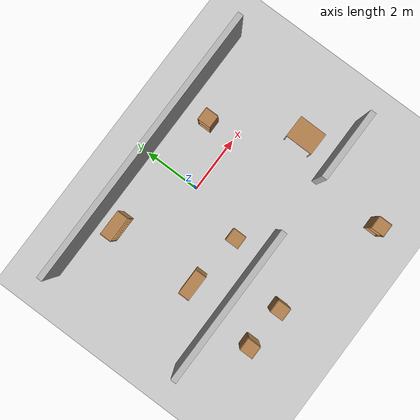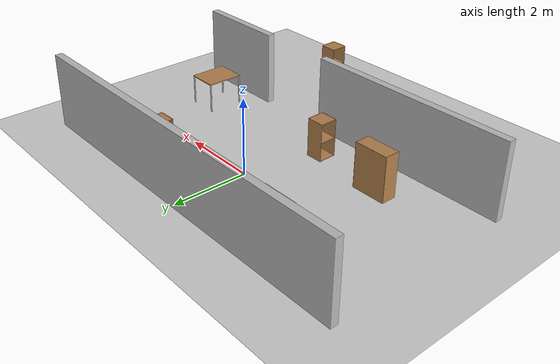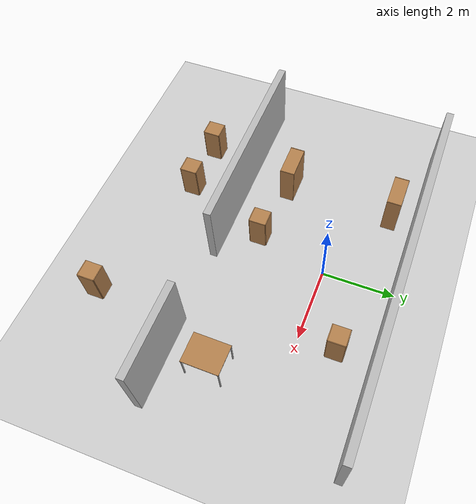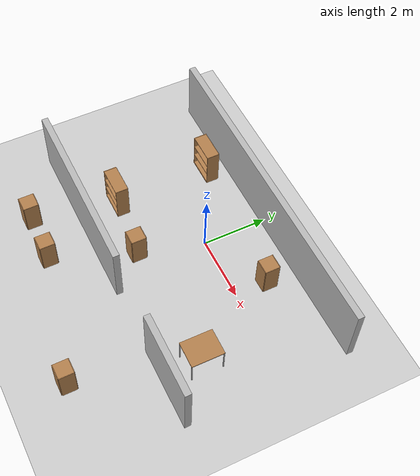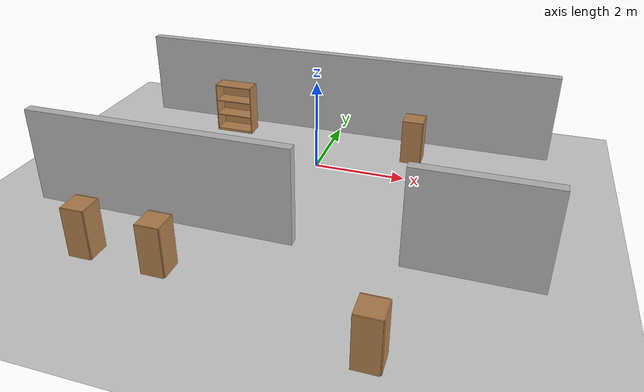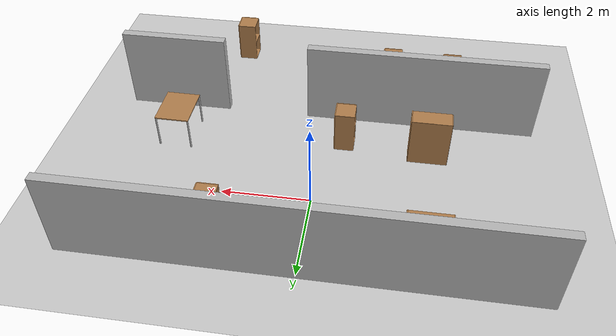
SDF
<sdf version="1.6">
 <world name="default">
  <model name="ground_plane">
   <static>1</static>
   <link name="link">
    <collision name="collision">
     <geometry><plane><normal>0 0 1</normal><size>100 100</size></plane></geometry>
     <surface><friction><ode><mu>100</mu><mu2>50</mu2></ode></friction></surface>
    </collision>
    <visual name="visual">
     <cast_shadows>0</cast_shadows>
     <geometry><plane><normal>0 0 1</normal><size>100 100</size></plane></geometry>
     <material>
      <script><uri>file://media/materials/scripts/gazebo.material</uri><name>Gazebo/Grey</name></script>
     </material>
    </visual>
    <velocity_decay><linear>0</linear><angular>0</angular></velocity_decay>
   </link>
  </model>
  <model name="wall_2_model">
   <pose>0.001644 1.98596 1 0 -0 0</pose>
   <static>1</static>
   <link name="wall_2_body">
    <inertial>
     <mass>1</mass>
     <inertia><ixx>1</ixx><ixy>0</ixy><ixz>0</ixz><iyy>1</iyy><iyz>0</iyz><izz>1</izz></inertia>
    </inertial>
    <collision name="collision"><geometry><box><size>10 0.2 2</size></box></geometry></collision>
    <visual name="visual"><geometry><box><size>10 0.2 2</size></box></geometry></visual>
    <velocity_decay><linear>0</linear><angular>0</angular></velocity_decay>
   </link>
  </model>
  <model name="wall_5_model">
   <pose>-2.25 -3 1 0 -0 0</pose>
   <static>1</static>
   <link name="wall_5_body">
    <inertial>
     <mass>1</mass>
     <inertia><ixx>1</ixx><ixy>0</ixy><ixz>0</ixz><iyy>1</iyy><iyz>0</iyz><izz>1</izz></inertia>
    </inertial>
    <collision name="collision"><geometry><box><size>5.5 0.2 2</size></box></geometry></collision>
    <visual name="visual"><geometry><box><size>5.5 0.2 2</size></box></geometry></visual>
    <velocity_decay><linear>0</linear><angular>0</angular></velocity_decay>
   </link>
  </model>
  <model name="wall_6_model">
   <pose>3.75 -3 1 0 -0 0</pose>
   <static>1</static>
   <link name="wall_6_body">
    <inertial>
     <mass>1</mass>
     <inertia><ixx>1</ixx><ixy>0</ixy><ixz>0</ixz><iyy>1</iyy><iyz>0</iyz><izz>1</izz></inertia>
    </inertial>
    <collision name="collision"><geometry><box><size>2.5 0.2 2</size></box></geometry></collision>
    <visual name="visual"><geometry><box><size>2.5 0.2 2</size></box></geometry></visual>
    <velocity_decay><linear>0</linear><angular>0</angular></velocity_decay>
   </link>
  </model>
  <model name="cabinet">
   <static>0</static>
   <link name="cabinet_bottom_plate">
    <inertial>
     <pose>0 0 -1 0 -0 0</pose>
     <inertia><ixx>2.05</ixx><ixy>0</ixy><ixz>0</ixz><iyy>2.05</iyy><iyz>0</iyz><izz>2.05</izz></inertia>
     <mass>25</mass>
    </inertial>
    <collision name="cabinet_bottom_plate_geom">
     <pose>0 0 0.01 0 -0 0</pose>
     <geometry><box><size>0.45 0.45 0.02</size></box></geometry>
    </collision>
    <visual name="cabinet_bottom_plate_geom_visual">
     <pose>0 0 0.01 0 -0 0</pose>
     <geometry><box><size>0.45 0.45 0.02</size></box></geometry>
     <material>
      <script><uri>file://media/materials/scripts/gazebo.material</uri><name>Gazebo/Wood</name></script>
     </material>
    </visual>
    <collision name="cabinet_bottom_plate_geom_cabinet_back_plate">
     <pose>0.235 0 0.51 0 -0 0</pose>
     <geometry><box><size>0.02 0.45 1.02</size></box></geometry>
    </collision>
    <visual name="cabinet_bottom_plate_geom_cabinet_back_plate_visual">
     <pose>0.235 0 0.51 0 -0 0</pose>
     <geometry><box><size>0.02 0.45 1.02</size></box></geometry>
     <material>
      <script><uri>file://media/materials/scripts/gazebo.material</uri><name>Gazebo/Wood</name></script>
     </material>
    </visual>
    <collision name="cabinet_bottom_plate_geom_cabinet_left_plate">
     <pose>0 0.235 0.51 0 -0 0</pose>
     <geometry><box><size>0.45 0.02 1.02</size></box></geometry>
    </collision>
    <visual name="cabinet_bottom_plate_geom_cabinet_left_plate_visual">
     <pose>0 0.235 0.51 0 -0 0</pose>
     <geometry><box><size>0.45 0.02 1.02</size></box></geometry>
     <material>
      <script><uri>file://media/materials/scripts/gazebo.material</uri><name>Gazebo/Wood</name></script>
     </material>
    </visual>
    <collision name="cabinet_bottom_plate_geom_cabinet_middle_plate">
     <pose>0 0 0.51 0 -0 0</pose>
     <geometry><box><size>0.45 0.45 0.02</size></box></geometry>
    </collision>
    <visual name="cabinet_bottom_plate_geom_cabinet_middle_plate_visual">
     <pose>0 0 0.51 0 -0 0</pose>
     <geometry><box><size>0.45 0.45 0.02</size></box></geometry>
     <material>
      <script><uri>file://media/materials/scripts/gazebo.material</uri><name>Gazebo/Wood</name></script>
     </material>
    </visual>
    <collision name="cabinet_bottom_plate_geom_cabinet_right_plate">
     <pose>0 -0.235 0.51 0 -0 0</pose>
     <geometry><box><size>0.45 0.02 1.02</size></box></geometry>
    </collision>
    <visual name="cabinet_bottom_plate_geom_cabinet_right_plate_visual">
     <pose>0 -0.235 0.51 0 -0 0</pose>
     <geometry><box><size>0.45 0.02 1.02</size></box></geometry>
     <material>
      <script><uri>file://media/materials/scripts/gazebo.material</uri><name>Gazebo/Wood</name></script>
     </material>
    </visual>
    <collision name="cabinet_bottom_plate_geom_cabinet_top_plate">
     <pose>0 0 1.01 0 -0 0</pose>
     <geometry><box><size>0.45 0.45 0.02</size></box></geometry>
    </collision>
    <visual name="cabinet_bottom_plate_geom_cabinet_top_plate_visual">
     <pose>0 0 1.01 0 -0 0</pose>
     <geometry><box><size>0.45 0.45 0.02</size></box></geometry>
     <material>
      <script><uri>file://media/materials/scripts/gazebo.material</uri><name>Gazebo/Wood</name></script>
     </material>
    </visual>
    <velocity_decay><linear>0</linear><angular>0</angular></velocity_decay>
   </link>
   <pose>1.99812 1.00005 0 -0 -1e-06 0.002549</pose>
  </model>
  <model name="cabinet_0">
   <static>0</static>
   <link name="cabinet_bottom_plate">
    <inertial>
     <pose>0 0 -1 0 -0 0</pose>
     <inertia><ixx>2.05</ixx><ixy>0</ixy><ixz>0</ixz><iyy>2.05</iyy><iyz>0</iyz><izz>2.05</izz></inertia>
     <mass>25</mass>
    </inertial>
    <collision name="cabinet_bottom_plate_geom">
     <pose>0 0 0.01 0 -0 0</pose>
     <geometry><box><size>0.45 0.45 0.02</size></box></geometry>
    </collision>
    <visual name="cabinet_bottom_plate_geom_visual">
     <pose>0 0 0.01 0 -0 0</pose>
     <geometry><box><size>0.45 0.45 0.02</size></box></geometry>
     <material>
      <script><uri>file://media/materials/scripts/gazebo.material</uri><name>Gazebo/Wood</name></script>
     </material>
    </visual>
    <collision name="cabinet_bottom_plate_geom_cabinet_back_plate">
     <pose>0.235 0 0.51 0 -0 0</pose>
     <geometry><box><size>0.02 0.45 1.02</size></box></geometry>
    </collision>
    <visual name="cabinet_bottom_plate_geom_cabinet_back_plate_visual">
     <pose>0.235 0 0.51 0 -0 0</pose>
     <geometry><box><size>0.02 0.45 1.02</size></box></geometry>
     <material>
      <script><uri>file://media/materials/scripts/gazebo.material</uri><name>Gazebo/Wood</name></script>
     </material>
    </visual>
    <collision name="cabinet_bottom_plate_geom_cabinet_left_plate">
     <pose>0 0.235 0.51 0 -0 0</pose>
     <geometry><box><size>0.45 0.02 1.02</size></box></geometry>
    </collision>
    <visual name="cabinet_bottom_plate_geom_cabinet_left_plate_visual">
     <pose>0 0.235 0.51 0 -0 0</pose>
     <geometry><box><size>0.45 0.02 1.02</size></box></geometry>
     <material>
      <script><uri>file://media/materials/scripts/gazebo.material</uri><name>Gazebo/Wood</name></script>
     </material>
    </visual>
    <collision name="cabinet_bottom_plate_geom_cabinet_middle_plate">
     <pose>0 0 0.51 0 -0 0</pose>
     <geometry><box><size>0.45 0.45 0.02</size></box></geometry>
    </collision>
    <visual name="cabinet_bottom_plate_geom_cabinet_middle_plate_visual">
     <pose>0 0 0.51 0 -0 0</pose>
     <geometry><box><size>0.45 0.45 0.02</size></box></geometry>
     <material>
      <script><uri>file://media/materials/scripts/gazebo.material</uri><name>Gazebo/Wood</name></script>
     </material>
    </visual>
    <collision name="cabinet_bottom_plate_geom_cabinet_right_plate">
     <pose>0 -0.235 0.51 0 -0 0</pose>
     <geometry><box><size>0.45 0.02 1.02</size></box></geometry>
    </collision>
    <visual name="cabinet_bottom_plate_geom_cabinet_right_plate_visual">
     <pose>0 -0.235 0.51 0 -0 0</pose>
     <geometry><box><size>0.45 0.02 1.02</size></box></geometry>
     <material>
      <script><uri>file://media/materials/scripts/gazebo.material</uri><name>Gazebo/Wood</name></script>
     </material>
    </visual>
    <collision name="cabinet_bottom_plate_geom_cabinet_top_plate">
     <pose>0 0 1.01 0 -0 0</pose>
     <geometry><box><size>0.45 0.45 0.02</size></box></geometry>
    </collision>
    <visual name="cabinet_bottom_plate_geom_cabinet_top_plate_visual">
     <pose>0 0 1.01 0 -0 0</pose>
     <geometry><box><size>0.45 0.45 0.02</size></box></geometry>
     <material>
      <script><uri>file://media/materials/scripts/gazebo.material</uri><name>Gazebo/Wood</name></script>
     </material>
    </visual>
    <velocity_decay><linear>0</linear><angular>0</angular></velocity_decay>
   </link>
   <pose>2.51385 -5.43945 0 0 -1e-06 0.002556</pose>
  </model>
  <model name="bookshelf_0">
   <static>0</static>
   <link name="link">
    <inertial>
     <mass>1</mass>
     <inertia><ixx>1</ixx><ixy>0</ixy><ixz>0</ixz><iyy>1</iyy><iyz>0</iyz><izz>1</izz></inertia>
    </inertial>
    <collision name="back">
     <pose>0 0.005 0.6 0 -0 0</pose>
     <geometry><box><size>0.9 0.01 1.2</size></box></geometry>
    </collision>
    <visual name="visual1">
     <pose>0 0.005 0.6 0 -0 0</pose>
     <geometry><box><size>0.9 0.01 1.2</size></box></geometry>
     <material>
      <script><uri>file://media/materials/scripts/gazebo.material</uri><name>Gazebo/Wood</name></script>
     </material>
    </visual>
    <collision name="left_side">
     <pose>0.45 -0.195 0.6 0 -0 0</pose>
     <geometry><box><size>0.02 0.4 1.2</size></box></geometry>
    </collision>
    <visual name="visual2">
     <pose>0.45 -0.195 0.6 0 -0 0</pose>
     <geometry><box><size>0.02 0.4 1.2</size></box></geometry>
     <material>
      <script><uri>file://media/materials/scripts/gazebo.material</uri><name>Gazebo/Wood</name></script>
     </material>
    </visual>
    <collision name="right_side">
     <pose>-0.45 -0.195 0.6 0 -0 0</pose>
     <geometry><box><size>0.02 0.4 1.2</size></box></geometry>
    </collision>
    <visual name="visual3">
     <pose>-0.45 -0.195 0.6 0 -0 0</pose>
     <geometry><box><size>0.02 0.4 1.2</size></box></geometry>
     <material>
      <script><uri>file://media/materials/scripts/gazebo.material</uri><name>Gazebo/Wood</name></script>
     </material>
    </visual>
    <collision name="bottom">
     <pose>0 -0.195 0.03 0 -0 0</pose>
     <geometry><box><size>0.88 0.4 0.06</size></box></geometry>
    </collision>
    <visual name="visual4">
     <pose>0 -0.195 0.03 0 -0 0</pose>
     <geometry><box><size>0.88 0.4 0.06</size></box></geometry>
     <material>
      <script><uri>file://media/materials/scripts/gazebo.material</uri><name>Gazebo/Wood</name></script>
     </material>
    </visual>
    <collision name="top">
     <pose>0 -0.195 1.19 0 -0 0</pose>
     <geometry><box><size>0.88 0.4 0.02</size></box></geometry>
    </collision>
    <visual name="visual5">
     <pose>0 -0.195 1.19 0 -0 0</pose>
     <geometry><box><size>0.88 0.4 0.02</size></box></geometry>
     <material>
      <script><uri>file://media/materials/scripts/gazebo.material</uri><name>Gazebo/Wood</name></script>
     </material>
    </visual>
    <collision name="low_shelf">
     <pose>0 -0.195 0.43 0 -0 0</pose>
     <geometry><box><size>0.88 0.4 0.02</size></box></geometry>
    </collision>
    <visual name="visual6">
     <pose>0 -0.195 0.43 0 -0 0</pose>
     <geometry><box><size>0.88 0.4 0.02</size></box></geometry>
     <material>
      <script><uri>file://media/materials/scripts/gazebo.material</uri><name>Gazebo/Wood</name></script>
     </material>
    </visual>
    <collision name="high_shelf">
     <pose>0 -0.195 0.8 0 -0 0</pose>
     <geometry><box><size>0.88 0.4 0.02</size></box></geometry>
    </collision>
    <visual name="visual7">
     <pose>0 -0.195 0.8 0 -0 0</pose>
     <geometry><box><size>0.88 0.4 0.02</size></box></geometry>
     <material>
      <script><uri>file://media/materials/scripts/gazebo.material</uri><name>Gazebo/Wood</name></script>
     </material>
    </visual>
    <velocity_decay><linear>0</linear><angular>0</angular></velocity_decay>
   </link>
   <pose>-2.49657 -1.57894 -1e-06 -6.1e-05 3e-06 0</pose>
  </model>
  <model name="bookshelf_1">
   <static>0</static>
   <link name="link">
    <inertial>
     <mass>1</mass>
     <inertia><ixx>1</ixx><ixy>0</ixy><ixz>0</ixz><iyy>1</iyy><iyz>0</iyz><izz>1</izz></inertia>
    </inertial>
    <collision name="back">
     <pose>0 0.005 0.6 0 -0 0</pose>
     <geometry><box><size>0.9 0.01 1.2</size></box></geometry>
    </collision>
    <visual name="visual1">
     <pose>0 0.005 0.6 0 -0 0</pose>
     <geometry><box><size>0.9 0.01 1.2</size></box></geometry>
     <material>
      <script><uri>file://media/materials/scripts/gazebo.material</uri><name>Gazebo/Wood</name></script>
     </material>
    </visual>
    <collision name="left_side">
     <pose>0.45 -0.195 0.6 0 -0 0</pose>
     <geometry><box><size>0.02 0.4 1.2</size></box></geometry>
    </collision>
    <visual name="visual2">
     <pose>0.45 -0.195 0.6 0 -0 0</pose>
     <geometry><box><size>0.02 0.4 1.2</size></box></geometry>
     <material>
      <script><uri>file://media/materials/scripts/gazebo.material</uri><name>Gazebo/Wood</name></script>
     </material>
    </visual>
    <collision name="right_side">
     <pose>-0.45 -0.195 0.6 0 -0 0</pose>
     <geometry><box><size>0.02 0.4 1.2</size></box></geometry>
    </collision>
    <visual name="visual3">
     <pose>-0.45 -0.195 0.6 0 -0 0</pose>
     <geometry><box><size>0.02 0.4 1.2</size></box></geometry>
     <material>
      <script><uri>file://media/materials/scripts/gazebo.material</uri><name>Gazebo/Wood</name></script>
     </material>
    </visual>
    <collision name="bottom">
     <pose>0 -0.195 0.03 0 -0 0</pose>
     <geometry><box><size>0.88 0.4 0.06</size></box></geometry>
    </collision>
    <visual name="visual4">
     <pose>0 -0.195 0.03 0 -0 0</pose>
     <geometry><box><size>0.88 0.4 0.06</size></box></geometry>
     <material>
      <script><uri>file://media/materials/scripts/gazebo.material</uri><name>Gazebo/Wood</name></script>
     </material>
    </visual>
    <collision name="top">
     <pose>0 -0.195 1.19 0 -0 0</pose>
     <geometry><box><size>0.88 0.4 0.02</size></box></geometry>
    </collision>
    <visual name="visual5">
     <pose>0 -0.195 1.19 0 -0 0</pose>
     <geometry><box><size>0.88 0.4 0.02</size></box></geometry>
     <material>
      <script><uri>file://media/materials/scripts/gazebo.material</uri><name>Gazebo/Wood</name></script>
     </material>
    </visual>
    <collision name="low_shelf">
     <pose>0 -0.195 0.43 0 -0 0</pose>
     <geometry><box><size>0.88 0.4 0.02</size></box></geometry>
    </collision>
    <visual name="visual6">
     <pose>0 -0.195 0.43 0 -0 0</pose>
     <geometry><box><size>0.88 0.4 0.02</size></box></geometry>
     <material>
      <script><uri>file://media/materials/scripts/gazebo.material</uri><name>Gazebo/Wood</name></script>
     </material>
    </visual>
    <collision name="high_shelf">
     <pose>0 -0.195 0.8 0 -0 0</pose>
     <geometry><box><size>0.88 0.4 0.02</size></box></geometry>
    </collision>
    <visual name="visual7">
     <pose>0 -0.195 0.8 0 -0 0</pose>
     <geometry><box><size>0.88 0.4 0.02</size></box></geometry>
     <material>
      <script><uri>file://media/materials/scripts/gazebo.material</uri><name>Gazebo/Wood</name></script>
     </material>
    </visual>
    <velocity_decay><linear>0</linear><angular>0</angular></velocity_decay>
   </link>
   <pose>-2.49796 1.46755 0 -3.2e-05 -0 -0.000743</pose>
  </model>
  <model name="cabinet_1">
   <static>0</static>
   <link name="cabinet_bottom_plate">
    <inertial>
     <pose>0 0 -1 0 -0 0</pose>
     <inertia><ixx>2.05</ixx><ixy>0</ixy><ixz>0</ixz><iyy>2.05</iyy><iyz>0</iyz><izz>2.05</izz></inertia>
     <mass>25</mass>
    </inertial>
    <collision name="cabinet_bottom_plate_geom">
     <pose>0 0 0.01 0 -0 0</pose>
     <geometry><box><size>0.45 0.45 0.02</size></box></geometry>
    </collision>
    <visual name="cabinet_bottom_plate_geom_visual">
     <pose>0 0 0.01 0 -0 0</pose>
     <geometry><box><size>0.45 0.45 0.02</size></box></geometry>
     <material>
      <script><uri>file://media/materials/scripts/gazebo.material</uri><name>Gazebo/Wood</name></script>
     </material>
    </visual>
    <collision name="cabinet_bottom_plate_geom_cabinet_back_plate">
     <pose>0.235 0 0.51 0 -0 0</pose>
     <geometry><box><size>0.02 0.45 1.02</size></box></geometry>
    </collision>
    <visual name="cabinet_bottom_plate_geom_cabinet_back_plate_visual">
     <pose>0.235 0 0.51 0 -0 0</pose>
     <geometry><box><size>0.02 0.45 1.02</size></box></geometry>
     <material>
      <script><uri>file://media/materials/scripts/gazebo.material</uri><name>Gazebo/Wood</name></script>
     </material>
    </visual>
    <collision name="cabinet_bottom_plate_geom_cabinet_left_plate">
     <pose>0 0.235 0.51 0 -0 0</pose>
     <geometry><box><size>0.45 0.02 1.02</size></box></geometry>
    </collision>
    <visual name="cabinet_bottom_plate_geom_cabinet_left_plate_visual">
     <pose>0 0.235 0.51 0 -0 0</pose>
     <geometry><box><size>0.45 0.02 1.02</size></box></geometry>
     <material>
      <script><uri>file://media/materials/scripts/gazebo.material</uri><name>Gazebo/Wood</name></script>
     </material>
    </visual>
    <collision name="cabinet_bottom_plate_geom_cabinet_middle_plate">
     <pose>0 0 0.51 0 -0 0</pose>
     <geometry><box><size>0.45 0.45 0.02</size></box></geometry>
    </collision>
    <visual name="cabinet_bottom_plate_geom_cabinet_middle_plate_visual">
     <pose>0 0 0.51 0 -0 0</pose>
     <geometry><box><size>0.45 0.45 0.02</size></box></geometry>
     <material>
      <script><uri>file://media/materials/scripts/gazebo.material</uri><name>Gazebo/Wood</name></script>
     </material>
    </visual>
    <collision name="cabinet_bottom_plate_geom_cabinet_right_plate">
     <pose>0 -0.235 0.51 0 -0 0</pose>
     <geometry><box><size>0.45 0.02 1.02</size></box></geometry>
    </collision>
    <visual name="cabinet_bottom_plate_geom_cabinet_right_plate_visual">
     <pose>0 -0.235 0.51 0 -0 0</pose>
     <geometry><box><size>0.45 0.02 1.02</size></box></geometry>
     <material>
      <script><uri>file://media/materials/scripts/gazebo.material</uri><name>Gazebo/Wood</name></script>
     </material>
    </visual>
    <collision name="cabinet_bottom_plate_geom_cabinet_top_plate">
     <pose>0 0 1.01 0 -0 0</pose>
     <geometry><box><size>0.45 0.45 0.02</size></box></geometry>
    </collision>
    <visual name="cabinet_bottom_plate_geom_cabinet_top_plate_visual">
     <pose>0 0 1.01 0 -0 0</pose>
     <geometry><box><size>0.45 0.45 0.02</size></box></geometry>
     <material>
      <script><uri>file://media/materials/scripts/gazebo.material</uri><name>Gazebo/Wood</name></script>
     </material>
    </visual>
    <velocity_decay><linear>0</linear><angular>0</angular></velocity_decay>
   </link>
   <pose>-3.00188 -4.40001 0 -0 -1e-06 0.002549</pose>
  </model>
  <model name="cabinet_2">
   <static>0</static>
   <link name="cabinet_bottom_plate">
    <inertial>
     <pose>0 0 -1 0 -0 0</pose>
     <inertia><ixx>2.05</ixx><ixy>0</ixy><ixz>0</ixz><iyy>2.05</iyy><iyz>0</iyz><izz>2.05</izz></inertia>
     <mass>25</mass>
    </inertial>
    <collision name="cabinet_bottom_plate_geom">
     <pose>0 0 0.01 0 -0 0</pose>
     <geometry><box><size>0.45 0.45 0.02</size></box></geometry>
    </collision>
    <visual name="cabinet_bottom_plate_geom_visual">
     <pose>0 0 0.01 0 -0 0</pose>
     <geometry><box><size>0.45 0.45 0.02</size></box></geometry>
     <material>
      <script><uri>file://media/materials/scripts/gazebo.material</uri><name>Gazebo/Wood</name></script>
     </material>
    </visual>
    <collision name="cabinet_bottom_plate_geom_cabinet_back_plate">
     <pose>0.235 0 0.51 0 -0 0</pose>
     <geometry><box><size>0.02 0.45 1.02</size></box></geometry>
    </collision>
    <visual name="cabinet_bottom_plate_geom_cabinet_back_plate_visual">
     <pose>0.235 0 0.51 0 -0 0</pose>
     <geometry><box><size>0.02 0.45 1.02</size></box></geometry>
     <material>
      <script><uri>file://media/materials/scripts/gazebo.material</uri><name>Gazebo/Wood</name></script>
     </material>
    </visual>
    <collision name="cabinet_bottom_plate_geom_cabinet_left_plate">
     <pose>0 0.235 0.51 0 -0 0</pose>
     <geometry><box><size>0.45 0.02 1.02</size></box></geometry>
    </collision>
    <visual name="cabinet_bottom_plate_geom_cabinet_left_plate_visual">
     <pose>0 0.235 0.51 0 -0 0</pose>
     <geometry><box><size>0.45 0.02 1.02</size></box></geometry>
     <material>
      <script><uri>file://media/materials/scripts/gazebo.material</uri><name>Gazebo/Wood</name></script>
     </material>
    </visual>
    <collision name="cabinet_bottom_plate_geom_cabinet_middle_plate">
     <pose>0 0 0.51 0 -0 0</pose>
     <geometry><box><size>0.45 0.45 0.02</size></box></geometry>
    </collision>
    <visual name="cabinet_bottom_plate_geom_cabinet_middle_plate_visual">
     <pose>0 0 0.51 0 -0 0</pose>
     <geometry><box><size>0.45 0.45 0.02</size></box></geometry>
     <material>
      <script><uri>file://media/materials/scripts/gazebo.material</uri><name>Gazebo/Wood</name></script>
     </material>
    </visual>
    <collision name="cabinet_bottom_plate_geom_cabinet_right_plate">
     <pose>0 -0.235 0.51 0 -0 0</pose>
     <geometry><box><size>0.45 0.02 1.02</size></box></geometry>
    </collision>
    <visual name="cabinet_bottom_plate_geom_cabinet_right_plate_visual">
     <pose>0 -0.235 0.51 0 -0 0</pose>
     <geometry><box><size>0.45 0.02 1.02</size></box></geometry>
     <material>
      <script><uri>file://media/materials/scripts/gazebo.material</uri><name>Gazebo/Wood</name></script>
     </material>
    </visual>
    <collision name="cabinet_bottom_plate_geom_cabinet_top_plate">
     <pose>0 0 1.01 0 -0 0</pose>
     <geometry><box><size>0.45 0.45 0.02</size></box></geometry>
    </collision>
    <visual name="cabinet_bottom_plate_geom_cabinet_top_plate_visual">
     <pose>0 0 1.01 0 -0 0</pose>
     <geometry><box><size>0.45 0.45 0.02</size></box></geometry>
     <material>
      <script><uri>file://media/materials/scripts/gazebo.material</uri><name>Gazebo/Wood</name></script>
     </material>
    </visual>
    <velocity_decay><linear>0</linear><angular>0</angular></velocity_decay>
   </link>
   <pose>-1.49371 -4.45617 0 0 -1e-06 0.002556</pose>
  </model>
  <model name="cabinet_4">
   <static>0</static>
   <link name="cabinet_bottom_plate">
    <inertial>
     <pose>0 0 -1 0 -0 0</pose>
     <inertia><ixx>2.05</ixx><ixy>0</ixy><ixz>0</ixz><iyy>2.05</iyy><iyz>0</iyz><izz>2.05</izz></inertia>
     <mass>25</mass>
    </inertial>
    <collision name="cabinet_bottom_plate_geom">
     <pose>0 0 0.01 0 -0 0</pose>
     <geometry><box><size>0.45 0.45 0.02</size></box></geometry>
    </collision>
    <visual name="cabinet_bottom_plate_geom_visual">
     <pose>0 0 0.01 0 -0 0</pose>
     <geometry><box><size>0.45 0.45 0.02</size></box></geometry>
     <material>
      <script><uri>file://media/materials/scripts/gazebo.material</uri><name>Gazebo/Wood</name></script>
     </material>
    </visual>
    <collision name="cabinet_bottom_plate_geom_cabinet_back_plate">
     <pose>0.235 0 0.51 0 -0 0</pose>
     <geometry><box><size>0.02 0.45 1.02</size></box></geometry>
    </collision>
    <visual name="cabinet_bottom_plate_geom_cabinet_back_plate_visual">
     <pose>0.235 0 0.51 0 -0 0</pose>
     <geometry><box><size>0.02 0.45 1.02</size></box></geometry>
     <material>
      <script><uri>file://media/materials/scripts/gazebo.material</uri><name>Gazebo/Wood</name></script>
     </material>
    </visual>
    <collision name="cabinet_bottom_plate_geom_cabinet_left_plate">
     <pose>0 0.235 0.51 0 -0 0</pose>
     <geometry><box><size>0.45 0.02 1.02</size></box></geometry>
    </collision>
    <visual name="cabinet_bottom_plate_geom_cabinet_left_plate_visual">
     <pose>0 0.235 0.51 0 -0 0</pose>
     <geometry><box><size>0.45 0.02 1.02</size></box></geometry>
     <material>
      <script><uri>file://media/materials/scripts/gazebo.material</uri><name>Gazebo/Wood</name></script>
     </material>
    </visual>
    <collision name="cabinet_bottom_plate_geom_cabinet_middle_plate">
     <pose>0 0 0.51 0 -0 0</pose>
     <geometry><box><size>0.45 0.45 0.02</size></box></geometry>
    </collision>
    <visual name="cabinet_bottom_plate_geom_cabinet_middle_plate_visual">
     <pose>0 0 0.51 0 -0 0</pose>
     <geometry><box><size>0.45 0.45 0.02</size></box></geometry>
     <material>
      <script><uri>file://media/materials/scripts/gazebo.material</uri><name>Gazebo/Wood</name></script>
     </material>
    </visual>
    <collision name="cabinet_bottom_plate_geom_cabinet_right_plate">
     <pose>0 -0.235 0.51 0 -0 0</pose>
     <geometry><box><size>0.45 0.02 1.02</size></box></geometry>
    </collision>
    <visual name="cabinet_bottom_plate_geom_cabinet_right_plate_visual">
     <pose>0 -0.235 0.51 0 -0 0</pose>
     <geometry><box><size>0.45 0.02 1.02</size></box></geometry>
     <material>
      <script><uri>file://media/materials/scripts/gazebo.material</uri><name>Gazebo/Wood</name></script>
     </material>
    </visual>
    <collision name="cabinet_bottom_plate_geom_cabinet_top_plate">
     <pose>0 0 1.01 0 -0 0</pose>
     <geometry><box><size>0.45 0.45 0.02</size></box></geometry>
    </collision>
    <visual name="cabinet_bottom_plate_geom_cabinet_top_plate_visual">
     <pose>0 0 1.01 0 -0 0</pose>
     <geometry><box><size>0.45 0.45 0.02</size></box></geometry>
     <material>
      <script><uri>file://media/materials/scripts/gazebo.material</uri><name>Gazebo/Wood</name></script>
     </material>
    </visual>
    <velocity_decay><linear>0</linear><angular>0</angular></velocity_decay>
   </link>
   <pose>-0.538876 -1.99995 0 -0 -1e-06 0.002549</pose>
  </model>
  <model name="table_3">
   <static>1</static>
   <link name="link">
    <collision name="surface">
     <pose>0 0 0.8 0 -0 0</pose>
     <geometry><box><size>1 0.8 0.03</size></box></geometry>
    </collision>
    <visual name="visual1">
     <pose>0 0 0.8 0 -0 0</pose>
     <geometry><box><size>1 0.8 0.03</size></box></geometry>
     <material>
      <script><uri>file://media/materials/scripts/gazebo.material</uri><name>Gazebo/Wood</name></script>
     </material>
    </visual>
    <collision name="front_left_leg">
     <pose>0.48 0.38 0.4 0 -0 0</pose>
     <geometry><cylinder><radius>0.02</radius><length>0.8</length></cylinder></geometry>
    </collision>
    <visual name="front_left_leg">
     <pose>0.48 0.38 0.4 0 -0 0</pose>
     <geometry><cylinder><radius>0.02</radius><length>0.8</length></cylinder></geometry>
     <material>
      <script><uri>file://media/materials/scripts/gazebo.material</uri><name>Gazebo/Grey</name></script>
     </material>
    </visual>
    <collision name="front_right_leg">
     <pose>0.48 -0.38 0.4 0 -0 0</pose>
     <geometry><cylinder><radius>0.02</radius><length>0.8</length></cylinder></geometry>
    </collision>
    <visual name="front_right_leg">
     <pose>0.48 -0.38 0.4 0 -0 0</pose>
     <geometry><cylinder><radius>0.02</radius><length>0.8</length></cylinder></geometry>
     <material>
      <script><uri>file://media/materials/scripts/gazebo.material</uri><name>Gazebo/Grey</name></script>
     </material>
    </visual>
    <collision name="back_right_leg">
     <pose>-0.48 -0.38 0.4 0 -0 0</pose>
     <geometry><cylinder><radius>0.02</radius><length>0.8</length></cylinder></geometry>
    </collision>
    <visual name="back_right_leg">
     <pose>-0.48 -0.38 0.4 0 -0 0</pose>
     <geometry><cylinder><radius>0.02</radius><length>0.8</length></cylinder></geometry>
     <material>
      <script><uri>file://media/materials/scripts/gazebo.material</uri><name>Gazebo/Grey</name></script>
     </material>
    </visual>
    <collision name="back_left_leg">
     <pose>-0.48 0.38 0.4 0 -0 0</pose>
     <geometry><cylinder><radius>0.02</radius><length>0.8</length></cylinder></geometry>
    </collision>
    <visual name="back_left_leg">
     <pose>-0.48 0.38 0.4 0 -0 0</pose>
     <geometry><cylinder><radius>0.02</radius><length>0.8</length></cylinder></geometry>
     <material>
      <script><uri>file://media/materials/scripts/gazebo.material</uri><name>Gazebo/Grey</name></script>
     </material>
    </visual>
    <velocity_decay><linear>0</linear><angular>0</angular></velocity_decay>
   </link>
   <pose>3.458 -1.83337 0 0 -0 1.56102</pose>
  </model>
 </world>
</sdf>
